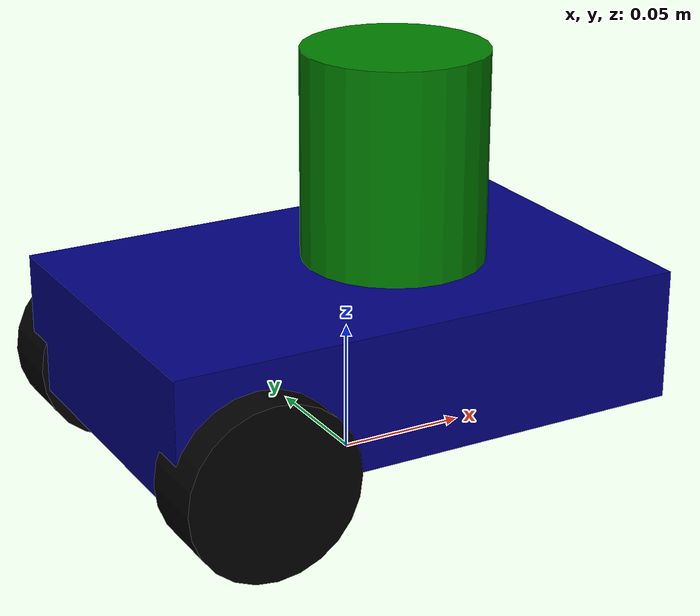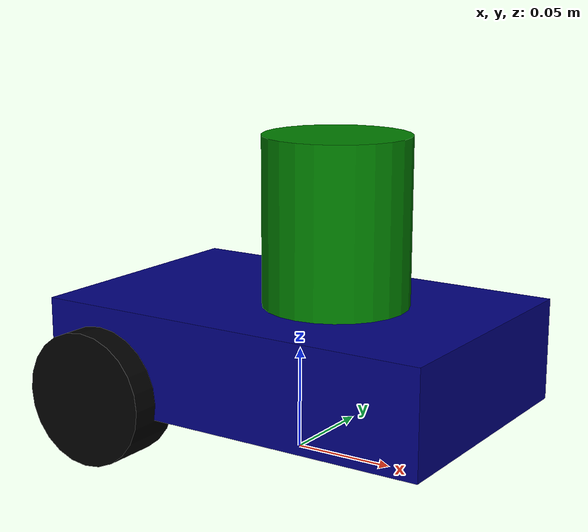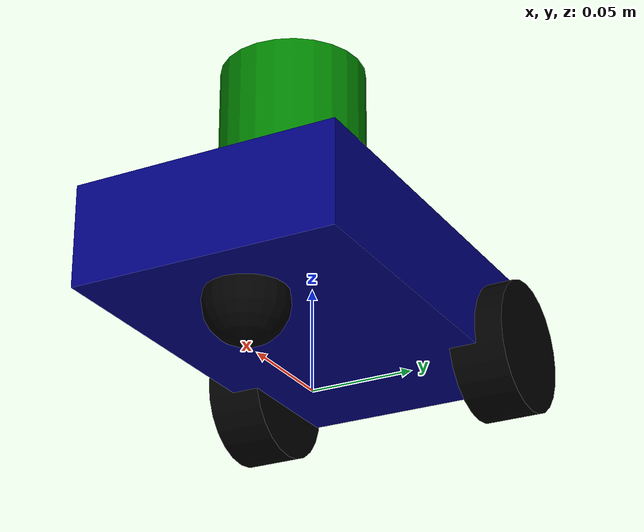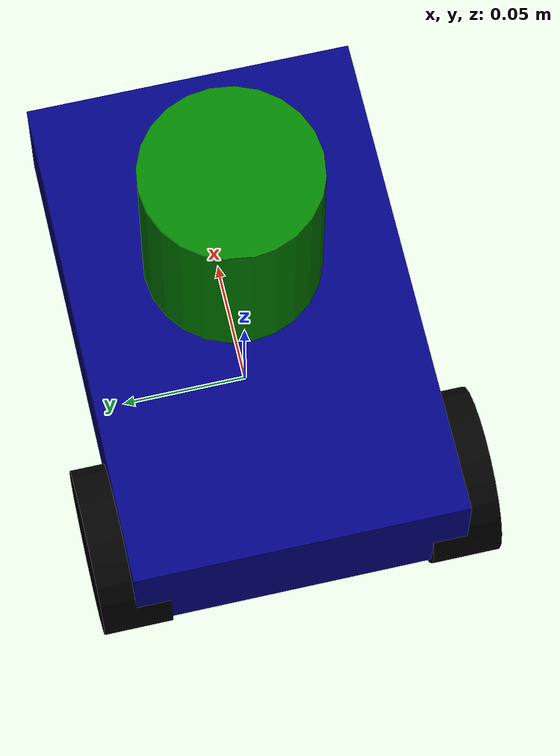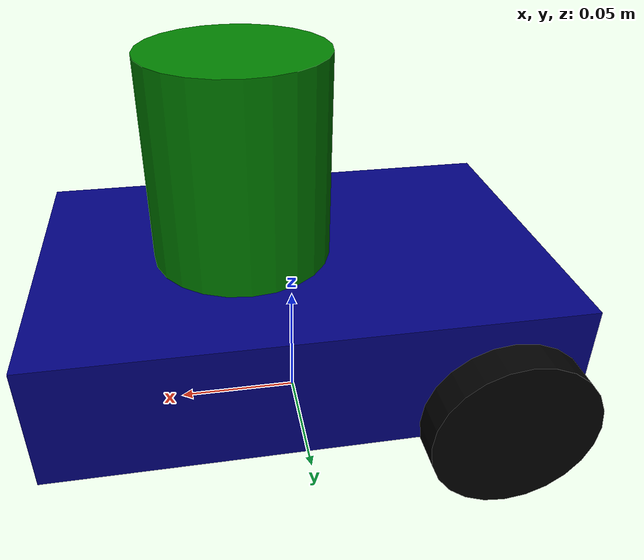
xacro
<?xml version="1.0"?>

<robot
  xmlns:xacro="http://www.ros.org/wiki/xacro"
  xmlns:sensor="http://playerstage.sourceforge.net/gazebo/xmlschema/#sensor"
  xmlns:controller="http://playerstage.sourceforge.net/gazebo/xmlschema/#controller"
  xmlns:interface="http://playerstage.sourceforge.net/gazebo/xmlschema/#interface" name="robot">

  <xacro:property name="body_length" value="0.20"/>
  <xacro:property name="body_width" value="0.13"/>
  <xacro:property name="body_height" value="0.05"/>
  <xacro:property name="front_wheel_radius" value="0.02"/>
  <xacro:property name="wheel_radius" value="0.0325"/>
  <xacro:property name="wheel_width" value="0.027"/>
  <xacro:property name="lidar_height" value="0.08"/>
  <xacro:macro name="default_inertial" params="mass">
    <inertial>
      <mass value="${mass}"/>
      <inertia ixx="1.0" ixy="0.0" ixz="0.0" iyy="1.0" iyz="0.0" izz="1.0"/>
    </inertial>
  </xacro:macro>
  <xacro:include filename="$(find myrobot)/urdf/robot.gazebo"/>

  <link name="base_link">
    <visual>
      <geometry>
        <box size="${body_length} ${body_width} ${body_height}"/>
      </geometry>
      <origin rpy="0 0 0" xyz="0 0 ${body_height/2+0.025}"/>
      <material name="blue">
        <color rgba="0 0 0.5 1"/>
      </material>
    </visual>
    <collision>
      <geometry>
        <box size="${body_length} ${body_width} ${body_height}"/>
      </geometry>
      <origin rpy="0 0 0" xyz="0 0 ${body_height/2+0.025}"/>
    </collision>
    <xacro:default_inertial mass="0.6"/>
  </link>

  <link name="front_wheel">
    <visual>
      <geometry>
        <sphere radius="${front_wheel_radius}"/>
      </geometry>
      <origin rpy="0 0 0" xyz="0 0 0"/>
      <material name="black">
        <color rgba="0 0 0 1"/>
      </material>
    </visual>
    <collision>
      <geometry>
        <sphere radius="${front_wheel_radius}"/>
      </geometry>
      <surface>
        <friction>
          <ode>
            <mu>0.1</mu>
            <mu2>0.1</mu2>
          </ode>
        </friction>
      </surface>
    </collision>
    <xacro:default_inertial mass="0.6"/>
  </link>

  <link name="left_wheel">
    <visual>
      <geometry>
        <cylinder length="${wheel_width}" radius="${wheel_radius}"/>
      </geometry>
      <origin rpy="0 0 0" xyz="0 0 0"/>
      <material name="black">
        <color rgba="0 0 0 1"/>
      </material>
    </visual>
    <collision>
      <geometry>
        <cylinder length="${wheel_width}" radius="${wheel_radius}"/>
      </geometry>
      <surface>
        <friction>
          <ode>
            <mu>1</mu>
            <mu2>1</mu2>
          </ode>
        </friction>
      </surface>
    </collision>
    <xacro:default_inertial mass="1"/>
  </link>

  <link name="right_wheel">
    <visual>
      <geometry>
        <cylinder length="${wheel_width}" radius="${wheel_radius}"/>
      </geometry>
      <origin rpy="0 0 0" xyz="0 0 0"/>
      <material name="black">
        <color rgba="0 0 0 1"/>
      </material>
    </visual>
    <collision>
      <geometry>
        <cylinder length="${wheel_width}" radius="${wheel_radius}"/>
      </geometry>
      <surface>
        <friction>
          <ode>
            <mu>1</mu>
            <mu2>1</mu2>
          </ode>
        </friction>
      </surface>
    </collision>
    <xacro:default_inertial mass="1"/>
  </link>

  <link name="rplidar">
    <visual>
      <geometry>
        <cylinder length="${lidar_height}" radius="0.035"/>
      </geometry>
      <material name="green">
        <color rgba="0 0.5 0 1"/>
      </material>
    </visual>
    <collision>
      <geometry>
        <cylinder length="${lidar_height}" radius="0.035"/>
      </geometry>
    </collision>
    <xacro:default_inertial mass="0.1"/>
  </link>

  <joint name="base_to_front_wheel" type="continuous">
    <parent link="base_link"/>
    <child link="front_wheel"/>
    <origin rpy="0 0 0" xyz="0.06 0 ${front_wheel_radius}"/>
    <axis xyz="1 1 1"/>
  </joint>
  <joint name="base_to_left_wheel" type="continuous">
    <parent link="base_link"/>
    <child link="left_wheel"/>
    <origin rpy="${-pi/2} 0 0" xyz="-0.07 ${body_width/2} ${wheel_radius}"/>
    <axis xyz="0 0 1"/>
  </joint>

  <joint name="base_to_right_wheel" type="continuous">
    <parent link="base_link"/>
    <child link="right_wheel"/>
    <origin rpy="${-pi/2} 0 0" xyz="-0.07 ${-body_width/2} ${wheel_radius}"/>
    <axis xyz="0 0 1"/>
  </joint>

  <joint name="base_to_rplidar" type="fixed">
    <parent link="base_link"/>
    <child link="rplidar"/>
    <origin rpy="0 0 0" xyz="0.02 0 ${lidar_height/2+body_height+0.025}"/>
    <axis xyz="0 0 1"/>
  </joint>

</robot>
